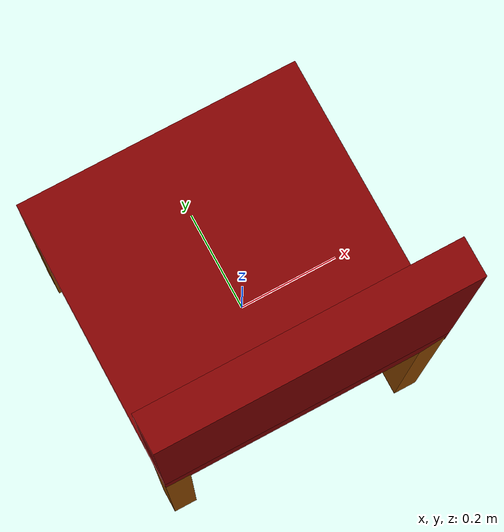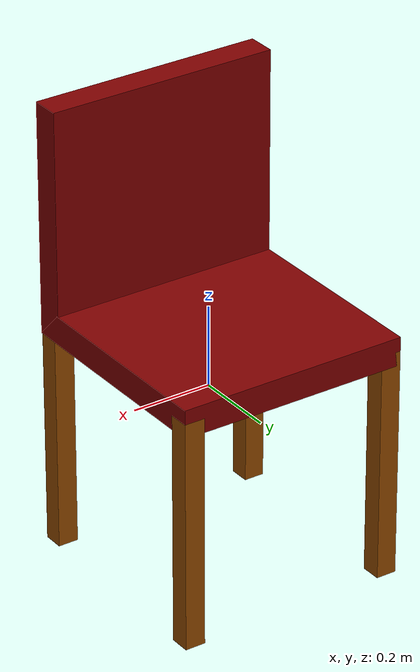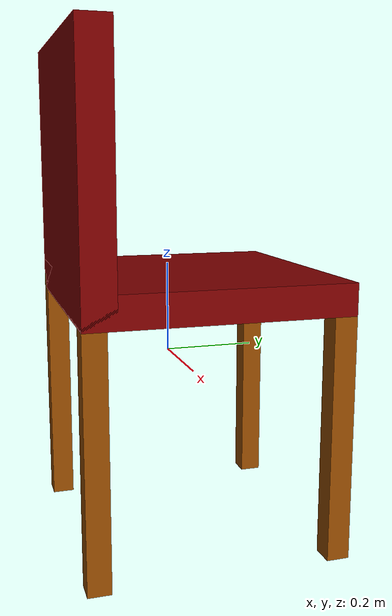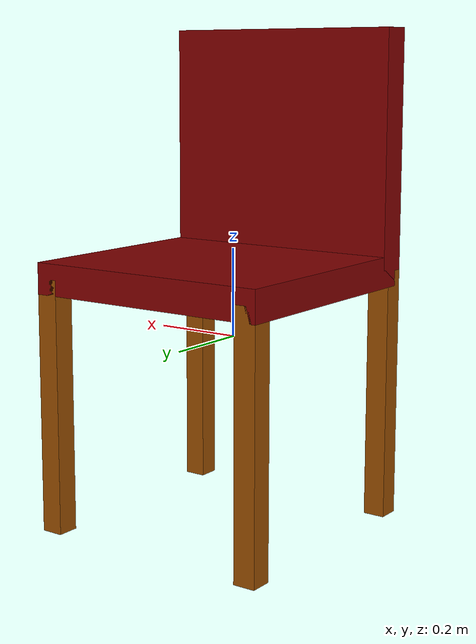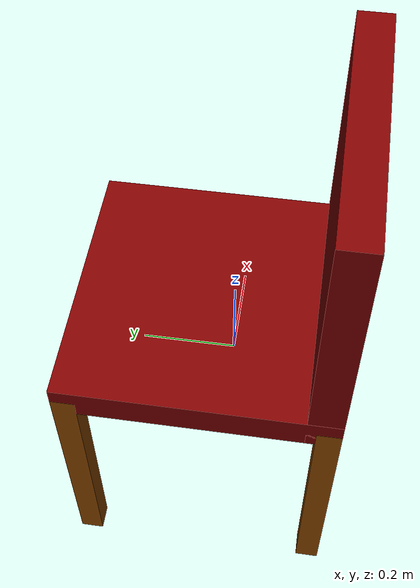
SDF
<?xml version='1.0'?>
<sdf version='1.6'>
  <model name='chair'>
    <link name='link_0'>
      <inertial>
        <mass>1</mass>
        <inertia>
          <ixx>0.166667</ixx>
          <ixy>0</ixy>
          <ixz>0</ixz>
          <iyy>0.166667</iyy>
          <iyz>0</iyz>
          <izz>0.166667</izz>
        </inertia>
        <pose frame=''>0 0 0 0 -0 0</pose>
      </inertial>
      <pose frame=''>0.000435 0.041667 0.148333 0 -0 0</pose>
      <gravity>1</gravity>
      <self_collide>0</self_collide>
      <kinematic>0</kinematic>
      <enable_wind>0</enable_wind>
      <visual name='visual'>
        <pose frame=''>0 0 0 0 -0 0</pose>
        <geometry>
          <box>
            <size>0.57 0.57 0.07</size>
          </box>
        </geometry>
        <material>
          <lighting>1</lighting>
          <script>
            <uri>file://media/materials/scripts/gazebo.material</uri>
            <name>Gazebo/Grey</name>
          </script>
          <shader type='vertex'>
            <normal_map>__default__</normal_map>
          </shader>
          <ambient>0.502 0 0 1</ambient>
          <diffuse>0.7 0.7 0.7 1</diffuse>
          <specular>0.01 0.01 0.01 1</specular>
          <emissive>0 0 0 1</emissive>
        </material>
        <transparency>0</transparency>
        <cast_shadows>1</cast_shadows>
      </visual>
      <collision name='collision'>
        <laser_retro>0</laser_retro>
        <max_contacts>10</max_contacts>
        <pose frame=''>0 0 0 0 -0 0</pose>
        <geometry>
          <box>
            <size>0.57 0.57 0.07</size>
          </box>
        </geometry>
        <surface>
          <friction>
            <ode>
              <mu>1</mu>
              <mu2>1</mu2>
              <fdir1>0 0 0</fdir1>
              <slip1>0</slip1>
              <slip2>0</slip2>
            </ode>
            <torsional>
              <coefficient>1</coefficient>
              <patch_radius>0</patch_radius>
              <surface_radius>0</surface_radius>
              <use_patch_radius>1</use_patch_radius>
              <ode>
                <slip>0</slip>
              </ode>
            </torsional>
          </friction>
          <bounce>
            <restitution_coefficient>0</restitution_coefficient>
            <threshold>1e+06</threshold>
          </bounce>
          <contact>
            <collide_without_contact>0</collide_without_contact>
            <collide_without_contact_bitmask>1</collide_without_contact_bitmask>
            <collide_bitmask>1</collide_bitmask>
            <ode>
              <soft_cfm>0</soft_cfm>
              <soft_erp>0.2</soft_erp>
              <kp>1e+13</kp>
              <kd>1</kd>
              <max_vel>0.01</max_vel>
              <min_depth>0</min_depth>
            </ode>
            <bullet>
              <split_impulse>1</split_impulse>
              <split_impulse_penetration_threshold>-0.01</split_impulse_penetration_threshold>
              <soft_cfm>0</soft_cfm>
              <soft_erp>0.2</soft_erp>
              <kp>1e+13</kp>
              <kd>1</kd>
            </bullet>
          </contact>
        </surface>
      </collision>
    </link>
    <link name='link_1'>
      <inertial>
        <mass>1</mass>
        <inertia>
          <ixx>0.166667</ixx>
          <ixy>0</ixy>
          <ixz>0</ixz>
          <iyy>0.166667</iyy>
          <iyz>0</iyz>
          <izz>0.166667</izz>
        </inertia>
        <pose frame=''>0 0 0 0 -0 0</pose>
      </inertial>
      <pose frame=''>0.000435 -0.208333 0.398333 0 -0 0</pose>
      <gravity>1</gravity>
      <self_collide>0</self_collide>
      <kinematic>0</kinematic>
      <enable_wind>0</enable_wind>
      <visual name='visual'>
        <pose frame=''>0 0 0 0 -0 0</pose>
        <geometry>
          <box>
            <size>0.57 0.07 0.57</size>
          </box>
        </geometry>
        <material>
          <lighting>1</lighting>
          <script>
            <uri>file://media/materials/scripts/gazebo.material</uri>
            <name>Gazebo/Grey</name>
          </script>
          <shader type='vertex'>
            <normal_map>__default__</normal_map>
          </shader>
          <ambient>0.502 0 0 1</ambient>
          <diffuse>0.7 0.7 0.7 1</diffuse>
          <specular>0.01 0.01 0.01 1</specular>
          <emissive>0 0 0 1</emissive>
        </material>
        <transparency>0</transparency>
        <cast_shadows>1</cast_shadows>
      </visual>
      <collision name='collision'>
        <laser_retro>0</laser_retro>
        <max_contacts>10</max_contacts>
        <pose frame=''>0 0 0 0 -0 0</pose>
        <geometry>
          <box>
            <size>0.57 0.07 0.57</size>
          </box>
        </geometry>
        <surface>
          <friction>
            <ode>
              <mu>1</mu>
              <mu2>1</mu2>
              <fdir1>0 0 0</fdir1>
              <slip1>0</slip1>
              <slip2>0</slip2>
            </ode>
            <torsional>
              <coefficient>1</coefficient>
              <patch_radius>0</patch_radius>
              <surface_radius>0</surface_radius>
              <use_patch_radius>1</use_patch_radius>
              <ode>
                <slip>0</slip>
              </ode>
            </torsional>
          </friction>
          <bounce>
            <restitution_coefficient>0</restitution_coefficient>
            <threshold>1e+06</threshold>
          </bounce>
          <contact>
            <collide_without_contact>0</collide_without_contact>
            <collide_without_contact_bitmask>1</collide_without_contact_bitmask>
            <collide_bitmask>1</collide_bitmask>
            <ode>
              <soft_cfm>0</soft_cfm>
              <soft_erp>0.2</soft_erp>
              <kp>1e+13</kp>
              <kd>1</kd>
              <max_vel>0.01</max_vel>
              <min_depth>0</min_depth>
            </ode>
            <bullet>
              <split_impulse>1</split_impulse>
              <split_impulse_penetration_threshold>-0.01</split_impulse_penetration_threshold>
              <soft_cfm>0</soft_cfm>
              <soft_erp>0.2</soft_erp>
              <kp>1e+13</kp>
              <kd>1</kd>
            </bullet>
          </contact>
        </surface>
      </collision>
    </link>
    <link name='link_2'>
      <inertial>
        <mass>1</mass>
        <inertia>
          <ixx>0.166667</ixx>
          <ixy>0</ixy>
          <ixz>0</ixz>
          <iyy>0.166667</iyy>
          <iyz>0</iyz>
          <izz>0.166667</izz>
        </inertia>
        <pose frame=''>0 0 0 0 -0 0</pose>
      </inertial>
      <pose frame=''>0.257825 -0.218333 -0.136667 0 -0 0</pose>
      <gravity>1</gravity>
      <self_collide>0</self_collide>
      <kinematic>0</kinematic>
      <enable_wind>0</enable_wind>
      <visual name='visual'>
        <pose frame=''>0 0 0 0 -0 0</pose>
        <geometry>
          <box>
            <size>0.05 0.05 0.57</size>
          </box>
        </geometry>
        <material>
          <lighting>1</lighting>
          <script>
            <uri>file://media/materials/scripts/gazebo.material</uri>
            <name>Gazebo/Grey</name>
          </script>
          <shader type='vertex'>
            <normal_map>__default__</normal_map>
          </shader>
          <ambient>0.588 0.294 0 1</ambient>
          <diffuse>0.7 0.7 0.7 1</diffuse>
          <specular>0.01 0.01 0.01 1</specular>
          <emissive>0 0 0 1</emissive>
        </material>
        <transparency>0</transparency>
        <cast_shadows>1</cast_shadows>
      </visual>
      <collision name='collision'>
        <laser_retro>0</laser_retro>
        <max_contacts>10</max_contacts>
        <pose frame=''>0 0 0 0 -0 0</pose>
        <geometry>
          <box>
            <size>0.05 0.05 0.57</size>
          </box>
        </geometry>
        <surface>
          <friction>
            <ode>
              <mu>1</mu>
              <mu2>1</mu2>
              <fdir1>0 0 0</fdir1>
              <slip1>0</slip1>
              <slip2>0</slip2>
            </ode>
            <torsional>
              <coefficient>1</coefficient>
              <patch_radius>0</patch_radius>
              <surface_radius>0</surface_radius>
              <use_patch_radius>1</use_patch_radius>
              <ode>
                <slip>0</slip>
              </ode>
            </torsional>
          </friction>
          <bounce>
            <restitution_coefficient>0</restitution_coefficient>
            <threshold>1e+06</threshold>
          </bounce>
          <contact>
            <collide_without_contact>0</collide_without_contact>
            <collide_without_contact_bitmask>1</collide_without_contact_bitmask>
            <collide_bitmask>1</collide_bitmask>
            <ode>
              <soft_cfm>0</soft_cfm>
              <soft_erp>0.2</soft_erp>
              <kp>1e+13</kp>
              <kd>1</kd>
              <max_vel>0.01</max_vel>
              <min_depth>0</min_depth>
            </ode>
            <bullet>
              <split_impulse>1</split_impulse>
              <split_impulse_penetration_threshold>-0.01</split_impulse_penetration_threshold>
              <soft_cfm>0</soft_cfm>
              <soft_erp>0.2</soft_erp>
              <kp>1e+13</kp>
              <kd>1</kd>
            </bullet>
          </contact>
        </surface>
      </collision>
    </link>
    <link name='link_2_clone'>
      <inertial>
        <mass>1</mass>
        <inertia>
          <ixx>0.166667</ixx>
          <ixy>0</ixy>
          <ixz>0</ixz>
          <iyy>0.166667</iyy>
          <iyz>0</iyz>
          <izz>0.166667</izz>
        </inertia>
        <pose frame=''>0 0 0 0 -0 0</pose>
      </inertial>
      <pose frame=''>-0.259565 -0.218333 -0.136667 0 -0 0</pose>
      <gravity>1</gravity>
      <self_collide>0</self_collide>
      <kinematic>0</kinematic>
      <enable_wind>0</enable_wind>
      <visual name='visual'>
        <pose frame=''>0 0 0 0 -0 0</pose>
        <geometry>
          <box>
            <size>0.05 0.05 0.57</size>
          </box>
        </geometry>
        <material>
          <lighting>1</lighting>
          <script>
            <uri>file://media/materials/scripts/gazebo.material</uri>
            <name>Gazebo/Grey</name>
          </script>
          <shader type='vertex'>
            <normal_map>__default__</normal_map>
          </shader>
          <ambient>0.588 0.294 0 1</ambient>
          <diffuse>0.7 0.7 0.7 1</diffuse>
          <specular>0.01 0.01 0.01 1</specular>
          <emissive>0 0 0 1</emissive>
        </material>
        <transparency>0</transparency>
        <cast_shadows>1</cast_shadows>
      </visual>
      <collision name='collision'>
        <laser_retro>0</laser_retro>
        <max_contacts>10</max_contacts>
        <pose frame=''>0 0 0 0 -0 0</pose>
        <geometry>
          <box>
            <size>0.05 0.05 0.57</size>
          </box>
        </geometry>
        <surface>
          <friction>
            <ode>
              <mu>1</mu>
              <mu2>1</mu2>
              <fdir1>0 0 0</fdir1>
              <slip1>0</slip1>
              <slip2>0</slip2>
            </ode>
            <torsional>
              <coefficient>1</coefficient>
              <patch_radius>0</patch_radius>
              <surface_radius>0</surface_radius>
              <use_patch_radius>1</use_patch_radius>
              <ode>
                <slip>0</slip>
              </ode>
            </torsional>
          </friction>
          <bounce>
            <restitution_coefficient>0</restitution_coefficient>
            <threshold>1e+06</threshold>
          </bounce>
          <contact>
            <collide_without_contact>0</collide_without_contact>
            <collide_without_contact_bitmask>1</collide_without_contact_bitmask>
            <collide_bitmask>1</collide_bitmask>
            <ode>
              <soft_cfm>0</soft_cfm>
              <soft_erp>0.2</soft_erp>
              <kp>1e+13</kp>
              <kd>1</kd>
              <max_vel>0.01</max_vel>
              <min_depth>0</min_depth>
            </ode>
            <bullet>
              <split_impulse>1</split_impulse>
              <split_impulse_penetration_threshold>-0.01</split_impulse_penetration_threshold>
              <soft_cfm>0</soft_cfm>
              <soft_erp>0.2</soft_erp>
              <kp>1e+13</kp>
              <kd>1</kd>
            </bullet>
          </contact>
        </surface>
      </collision>
    </link>
    <link name='link_2_clone_clone'>
      <inertial>
        <mass>1</mass>
        <inertia>
          <ixx>0.166667</ixx>
          <ixy>0</ixy>
          <ixz>0</ixz>
          <iyy>0.166667</iyy>
          <iyz>0</iyz>
          <izz>0.166667</izz>
        </inertia>
        <pose frame=''>0 0 0 0 -0 0</pose>
      </inertial>
      <pose frame=''>-0.259565 0.301667 -0.136667 0 -0 0</pose>
      <gravity>1</gravity>
      <self_collide>0</self_collide>
      <kinematic>0</kinematic>
      <enable_wind>0</enable_wind>
      <visual name='visual'>
        <pose frame=''>0 0 0 0 -0 0</pose>
        <geometry>
          <box>
            <size>0.05 0.05 0.57</size>
          </box>
        </geometry>
        <material>
          <lighting>1</lighting>
          <script>
            <uri>file://media/materials/scripts/gazebo.material</uri>
            <name>Gazebo/Grey</name>
          </script>
          <shader type='vertex'>
            <normal_map>__default__</normal_map>
          </shader>
          <ambient>0.588 0.294 0 1</ambient>
          <diffuse>0.7 0.7 0.7 1</diffuse>
          <specular>0.01 0.01 0.01 1</specular>
          <emissive>0 0 0 1</emissive>
        </material>
        <transparency>0</transparency>
        <cast_shadows>1</cast_shadows>
      </visual>
      <collision name='collision'>
        <laser_retro>0</laser_retro>
        <max_contacts>10</max_contacts>
        <pose frame=''>0 0 0 0 -0 0</pose>
        <geometry>
          <box>
            <size>0.05 0.05 0.57</size>
          </box>
        </geometry>
        <surface>
          <friction>
            <ode>
              <mu>1</mu>
              <mu2>1</mu2>
              <fdir1>0 0 0</fdir1>
              <slip1>0</slip1>
              <slip2>0</slip2>
            </ode>
            <torsional>
              <coefficient>1</coefficient>
              <patch_radius>0</patch_radius>
              <surface_radius>0</surface_radius>
              <use_patch_radius>1</use_patch_radius>
              <ode>
                <slip>0</slip>
              </ode>
            </torsional>
          </friction>
          <bounce>
            <restitution_coefficient>0</restitution_coefficient>
            <threshold>1e+06</threshold>
          </bounce>
          <contact>
            <collide_without_contact>0</collide_without_contact>
            <collide_without_contact_bitmask>1</collide_without_contact_bitmask>
            <collide_bitmask>1</collide_bitmask>
            <ode>
              <soft_cfm>0</soft_cfm>
              <soft_erp>0.2</soft_erp>
              <kp>1e+13</kp>
              <kd>1</kd>
              <max_vel>0.01</max_vel>
              <min_depth>0</min_depth>
            </ode>
            <bullet>
              <split_impulse>1</split_impulse>
              <split_impulse_penetration_threshold>-0.01</split_impulse_penetration_threshold>
              <soft_cfm>0</soft_cfm>
              <soft_erp>0.2</soft_erp>
              <kp>1e+13</kp>
              <kd>1</kd>
            </bullet>
          </contact>
        </surface>
      </collision>
    </link>
    <link name='link_2_clone_clone_0'>
      <inertial>
        <mass>1</mass>
        <inertia>
          <ixx>0.166667</ixx>
          <ixy>0</ixy>
          <ixz>0</ixz>
          <iyy>0.166667</iyy>
          <iyz>0</iyz>
          <izz>0.166667</izz>
        </inertia>
        <pose frame=''>0 0 0 0 -0 0</pose>
      </inertial>
      <pose frame=''>0.260435 0.301667 -0.136667 0 -0 0</pose>
      <gravity>1</gravity>
      <self_collide>0</self_collide>
      <kinematic>0</kinematic>
      <enable_wind>0</enable_wind>
      <visual name='visual'>
        <pose frame=''>0 0 0 0 -0 0</pose>
        <geometry>
          <box>
            <size>0.05 0.05 0.57</size>
          </box>
        </geometry>
        <material>
          <lighting>1</lighting>
          <script>
            <uri>file://media/materials/scripts/gazebo.material</uri>
            <name>Gazebo/Grey</name>
          </script>
          <shader type='vertex'>
            <normal_map>__default__</normal_map>
          </shader>
          <ambient>0.588 0.294 0 1</ambient>
          <diffuse>0.7 0.7 0.7 1</diffuse>
          <specular>0.01 0.01 0.01 1</specular>
          <emissive>0 0 0 1</emissive>
        </material>
        <transparency>0</transparency>
        <cast_shadows>1</cast_shadows>
      </visual>
      <collision name='collision'>
        <laser_retro>0</laser_retro>
        <max_contacts>10</max_contacts>
        <pose frame=''>0 0 0 0 -0 0</pose>
        <geometry>
          <box>
            <size>0.05 0.05 0.57</size>
          </box>
        </geometry>
        <surface>
          <friction>
            <ode>
              <mu>1</mu>
              <mu2>1</mu2>
              <fdir1>0 0 0</fdir1>
              <slip1>0</slip1>
              <slip2>0</slip2>
            </ode>
            <torsional>
              <coefficient>1</coefficient>
              <patch_radius>0</patch_radius>
              <surface_radius>0</surface_radius>
              <use_patch_radius>1</use_patch_radius>
              <ode>
                <slip>0</slip>
              </ode>
            </torsional>
          </friction>
          <bounce>
            <restitution_coefficient>0</restitution_coefficient>
            <threshold>1e+06</threshold>
          </bounce>
          <contact>
            <collide_without_contact>0</collide_without_contact>
            <collide_without_contact_bitmask>1</collide_without_contact_bitmask>
            <collide_bitmask>1</collide_bitmask>
            <ode>
              <soft_cfm>0</soft_cfm>
              <soft_erp>0.2</soft_erp>
              <kp>1e+13</kp>
              <kd>1</kd>
              <max_vel>0.01</max_vel>
              <min_depth>0</min_depth>
            </ode>
            <bullet>
              <split_impulse>1</split_impulse>
              <split_impulse_penetration_threshold>-0.01</split_impulse_penetration_threshold>
              <soft_cfm>0</soft_cfm>
              <soft_erp>0.2</soft_erp>
              <kp>1e+13</kp>
              <kd>1</kd>
            </bullet>
          </contact>
        </surface>
      </collision>
    </link>
    <joint name='link_0_JOINT_0' type='fixed'>
      <parent>link_0</parent>
      <child>link_1</child>
      <pose frame=''>0 0 0 0 -0 0</pose>
      <physics>
        <ode>
          <limit>
            <cfm>0</cfm>
            <erp>0.2</erp>
          </limit>
          <suspension>
            <cfm>0</cfm>
            <erp>0.2</erp>
          </suspension>
        </ode>
      </physics>
    </joint>
    <joint name='link_0_JOINT_4' type='fixed'>
      <parent>link_0</parent>
      <child>link_2</child>
      <pose frame=''>0 0 0 0 -0 0</pose>
      <physics>
        <ode>
          <limit>
            <cfm>0</cfm>
            <erp>0.2</erp>
          </limit>
          <suspension>
            <cfm>0</cfm>
            <erp>0.2</erp>
          </suspension>
        </ode>
      </physics>
    </joint>
    <joint name='link_0_JOINT_5' type='fixed'>
      <parent>link_0</parent>
      <child>link_2_clone</child>
      <pose frame=''>0 0 0 0 -0 0</pose>
      <physics>
        <ode>
          <limit>
            <cfm>0</cfm>
            <erp>0.2</erp>
          </limit>
          <suspension>
            <cfm>0</cfm>
            <erp>0.2</erp>
          </suspension>
        </ode>
      </physics>
    </joint>
    <joint name='link_0_JOINT_6' type='fixed'>
      <parent>link_0</parent>
      <child>link_2_clone_clone_0</child>
      <pose frame=''>0 0 0 0 -0 0</pose>
      <physics>
        <ode>
          <limit>
            <cfm>0</cfm>
            <erp>0.2</erp>
          </limit>
          <suspension>
            <cfm>0</cfm>
            <erp>0.2</erp>
          </suspension>
        </ode>
      </physics>
    </joint>
    <joint name='link_0_JOINT_7' type='fixed'>
      <parent>link_0</parent>
      <child>link_2_clone_clone</child>
      <pose frame=''>0 0 0 0 -0 0</pose>
      <physics>
        <ode>
          <limit>
            <cfm>0</cfm>
            <erp>0.2</erp>
          </limit>
          <suspension>
            <cfm>0</cfm>
            <erp>0.2</erp>
          </suspension>
        </ode>
      </physics>
    </joint>
    <static>0</static>
    <allow_auto_disable>1</allow_auto_disable>
  </model>
</sdf>
